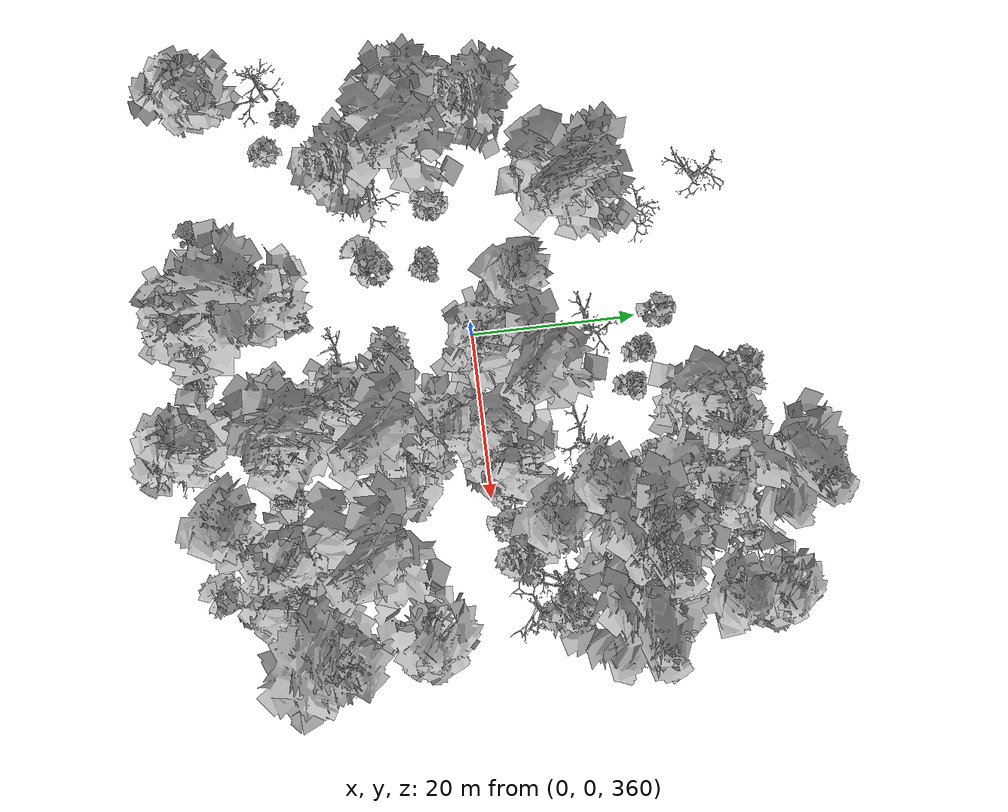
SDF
<sdf version="1.6">
 <world name="default">
  <light name="sun" type="directional">
   <pose>0 0 10 0 -0 0</pose>
   <diffuse>0.8 0.8 0.8 1</diffuse>
   <specular>0.2 0.2 0.2 1</specular>
   <attenuation>
    <range>1000</range>
    <constant>0.9</constant>
    <linear>0.01</linear>
    <quadratic>0.001</quadratic>
   </attenuation>
   <direction>-0.5 0.1 -0.9</direction>
  </light>
  <scene>
   <sky><clouds><speed>12</speed></clouds></sky>
   <ambient>0.4 0.4 0.4 1</ambient>
   <background>0.7 0.7 0.7 1</background>
   <shadows>1</shadows>
  </scene>
  <spherical_coordinates>
   <surface_model>EARTH_WGS84</surface_model>
   <latitude_deg>47.3977</latitude_deg>
   <longitude_deg>8.54559</longitude_deg>
   <elevation>0</elevation>
   <heading_deg>0</heading_deg>
  </spherical_coordinates>
  <physics name="default_physics" default="0" type="ode">
   <ode>
    <solver>
     <type>quick</type>
     <iters>100</iters>
     <sor>1.3</sor>
     <use_dynamic_moi_rescaling>0</use_dynamic_moi_rescaling>
    </solver>
    <constraints>
     <cfm>0</cfm>
     <erp>0.2</erp>
     <contact_max_correcting_vel>100</contact_max_correcting_vel>
     <contact_surface_layer>0.001</contact_surface_layer>
    </constraints>
   </ode>
   <max_step_size>0.002</max_step_size>
   <real_time_factor>1</real_time_factor>
   <real_time_update_rate>500</real_time_update_rate>
  </physics>
  <gravity>0 0 -9.8</gravity>
  <magnetic_field>6e-06 2.3e-05 -4.2e-05</magnetic_field>
  <atmosphere type="adiabatic"/>
  <model name="my_mesh0">
   <pose>21.5166 27.1415 356.838 0 -0 0.201744</pose>
   <static>1</static>
   <link name="body">
    <visual name="visual">
     <geometry><mesh><uri>model://trees/19.dae</uri><scale>1 1 1</scale></mesh></geometry>
    </visual>
    <collision name="collision">
     <geometry><mesh><uri>model://trees/19.dae</uri><scale>1 1 1</scale></mesh></geometry>
    </collision>
   </link>
  </model>
  <model name="my_mesh1">
   <pose>33.5597 7.6444 359.053 0 -0 1.34309</pose>
   <static>1</static>
   <link name="body">
    <visual name="visual">
     <geometry><mesh><uri>model://trees/7.dae</uri><scale>1 1 1</scale></mesh></geometry>
    </visual>
    <collision name="collision">
     <geometry><mesh><uri>model://trees/7.dae</uri><scale>1 1 1</scale></mesh></geometry>
    </collision>
   </link>
  </model>
  <model name="my_mesh2">
   <pose>17.9104 19.8108 357.181 0 0 -0.54948</pose>
   <static>1</static>
   <link name="body">
    <visual name="visual">
     <geometry><mesh><uri>model://trees/4.dae</uri><scale>1 1 1</scale></mesh></geometry>
    </visual>
    <collision name="collision">
     <geometry><mesh><uri>model://trees/4.dae</uri><scale>1 1 1</scale></mesh></geometry>
    </collision>
   </link>
  </model>
  <model name="my_mesh3">
   <pose>28.0439 29.9841 357.687 0 0 -0.559596</pose>
   <static>1</static>
   <link name="body">
    <visual name="visual">
     <geometry><mesh><uri>model://trees/0.dae</uri><scale>1 1 1</scale></mesh></geometry>
    </visual>
    <collision name="collision">
     <geometry><mesh><uri>model://trees/0.dae</uri><scale>1 1 1</scale></mesh></geometry>
    </collision>
   </link>
  </model>
  <model name="my_mesh4">
   <pose>19.7328 22.4859 357.15 0 -0 0.228012</pose>
   <static>1</static>
   <link name="body">
    <visual name="visual">
     <geometry><mesh><uri>model://trees/13.dae</uri><scale>1 1 1</scale></mesh></geometry>
    </visual>
    <collision name="collision">
     <geometry><mesh><uri>model://trees/13.dae</uri><scale>1 1 1</scale></mesh></geometry>
    </collision>
   </link>
  </model>
  <model name="my_mesh5">
   <pose>22.4893 6.48692 358.892 0 -0 1.29737</pose>
   <static>1</static>
   <link name="body">
    <visual name="visual">
     <geometry><mesh><uri>model://trees/11.dae</uri><scale>1 1 1</scale></mesh></geometry>
    </visual>
    <collision name="collision">
     <geometry><mesh><uri>model://trees/11.dae</uri><scale>1 1 1</scale></mesh></geometry>
    </collision>
   </link>
  </model>
  <model name="my_mesh6">
   <pose>21.3742 26.0179 356.882 0 -0 0.825766</pose>
   <static>1</static>
   <link name="body">
    <visual name="visual">
     <geometry><mesh><uri>model://trees/15.dae</uri><scale>1 1 1</scale></mesh></geometry>
    </visual>
    <collision name="collision">
     <geometry><mesh><uri>model://trees/15.dae</uri><scale>1 1 1</scale></mesh></geometry>
    </collision>
   </link>
  </model>
  <model name="my_mesh7">
   <pose>9.73709 25.9963 355.56 0 0 -0.54868</pose>
   <static>1</static>
   <link name="body">
    <visual name="visual">
     <geometry><mesh><uri>model://trees/11.dae</uri><scale>1 1 1</scale></mesh></geometry>
    </visual>
    <collision name="collision">
     <geometry><mesh><uri>model://trees/11.dae</uri><scale>1 1 1</scale></mesh></geometry>
    </collision>
   </link>
  </model>
  <model name="my_mesh8">
   <pose>33.5902 26.5411 357.777 0 -0 1.47182</pose>
   <static>1</static>
   <link name="body">
    <visual name="visual">
     <geometry><mesh><uri>model://trees/11.dae</uri><scale>1 1 1</scale></mesh></geometry>
    </visual>
    <collision name="collision">
     <geometry><mesh><uri>model://trees/11.dae</uri><scale>1 1 1</scale></mesh></geometry>
    </collision>
   </link>
  </model>
  <model name="my_mesh9">
   <pose>19.0828 14.7371 357.488 0 -0 1.20327</pose>
   <static>1</static>
   <link name="body">
    <visual name="visual">
     <geometry><mesh><uri>model://trees/4.dae</uri><scale>1 1 1</scale></mesh></geometry>
    </visual>
    <collision name="collision">
     <geometry><mesh><uri>model://trees/4.dae</uri><scale>1 1 1</scale></mesh></geometry>
    </collision>
   </link>
  </model>
  <model name="my_mesh10">
   <pose>0.516906 14.2607 355.552 0 0 -1.35807</pose>
   <static>1</static>
   <link name="body">
    <visual name="visual">
     <geometry><mesh><uri>model://trees/18.dae</uri><scale>1 1 1</scale></mesh></geometry>
    </visual>
    <collision name="collision">
     <geometry><mesh><uri>model://trees/18.dae</uri><scale>1 1 1</scale></mesh></geometry>
    </collision>
   </link>
  </model>
  <model name="my_mesh11">
   <pose>8.53214 18.5393 355.779 0 -0 0.512432</pose>
   <static>1</static>
   <link name="body">
    <visual name="visual">
     <geometry><mesh><uri>model://trees/6.dae</uri><scale>1 1 1</scale></mesh></geometry>
    </visual>
    <collision name="collision">
     <geometry><mesh><uri>model://trees/6.dae</uri><scale>1 1 1</scale></mesh></geometry>
    </collision>
   </link>
  </model>
  <model name="my_mesh12">
   <pose>15.1226 28.2982 356.233 0 -0 1.40347</pose>
   <static>1</static>
   <link name="body">
    <visual name="visual">
     <geometry><mesh><uri>model://trees/14.dae</uri><scale>1 1 1</scale></mesh></geometry>
    </visual>
    <collision name="collision">
     <geometry><mesh><uri>model://trees/14.dae</uri><scale>1 1 1</scale></mesh></geometry>
    </collision>
   </link>
  </model>
  <model name="my_mesh13">
   <pose>19.3101 34.7017 356.04 0 -0 0.905402</pose>
   <static>1</static>
   <link name="body">
    <visual name="visual">
     <geometry><mesh><uri>model://trees/10.dae</uri><scale>1 1 1</scale></mesh></geometry>
    </visual>
    <collision name="collision">
     <geometry><mesh><uri>model://trees/10.dae</uri><scale>1 1 1</scale></mesh></geometry>
    </collision>
   </link>
  </model>
  <model name="my_mesh14">
   <pose>16.8988 21.6624 356.967 0 -0 0.187161</pose>
   <static>1</static>
   <link name="body">
    <visual name="visual">
     <geometry><mesh><uri>model://trees/6.dae</uri><scale>1 1 1</scale></mesh></geometry>
    </visual>
    <collision name="collision">
     <geometry><mesh><uri>model://trees/6.dae</uri><scale>1 1 1</scale></mesh></geometry>
    </collision>
   </link>
  </model>
  <model name="my_mesh15">
   <pose>24.1455 18.3687 357.703 0 0 -0.517641</pose>
   <static>1</static>
   <link name="body">
    <visual name="visual">
     <geometry><mesh><uri>model://trees/10.dae</uri><scale>1 1 1</scale></mesh></geometry>
    </visual>
    <collision name="collision">
     <geometry><mesh><uri>model://trees/10.dae</uri><scale>1 1 1</scale></mesh></geometry>
    </collision>
   </link>
  </model>
  <model name="my_mesh16">
   <pose>26.1483 17.2498 357.863 0 -0 0.541821</pose>
   <static>1</static>
   <link name="body">
    <visual name="visual">
     <geometry><mesh><uri>model://trees/10.dae</uri><scale>1 1 1</scale></mesh></geometry>
    </visual>
    <collision name="collision">
     <geometry><mesh><uri>model://trees/10.dae</uri><scale>1 1 1</scale></mesh></geometry>
    </collision>
   </link>
  </model>
  <model name="my_mesh17">
   <pose>34.0415 32.321 356.651 0 -0 1.00524</pose>
   <static>1</static>
   <link name="body">
    <visual name="visual">
     <geometry><mesh><uri>model://trees/12.dae</uri><scale>1 1 1</scale></mesh></geometry>
    </visual>
    <collision name="collision">
     <geometry><mesh><uri>model://trees/12.dae</uri><scale>1 1 1</scale></mesh></geometry>
    </collision>
   </link>
  </model>
  <model name="my_mesh18">
   <pose>28.1881 12.5024 358.361 0 0 -0.152817</pose>
   <static>1</static>
   <link name="body">
    <visual name="visual">
     <geometry><mesh><uri>model://trees/2.dae</uri><scale>1 1 1</scale></mesh></geometry>
    </visual>
    <collision name="collision">
     <geometry><mesh><uri>model://trees/2.dae</uri><scale>1 1 1</scale></mesh></geometry>
    </collision>
   </link>
  </model>
  <model name="my_mesh19">
   <pose>34.6491 15.2813 357.806 0 -0 0.397239</pose>
   <static>1</static>
   <link name="body">
    <visual name="visual">
     <geometry><mesh><uri>model://trees/10.dae</uri><scale>1 1 1</scale></mesh></geometry>
    </visual>
    <collision name="collision">
     <geometry><mesh><uri>model://trees/10.dae</uri><scale>1 1 1</scale></mesh></geometry>
    </collision>
   </link>
  </model>
  <model name="my_mesh20">
   <pose>22.4984 -13.4306 361.921 0 0 -0.702154</pose>
   <static>1</static>
   <link name="body">
    <visual name="visual">
     <geometry><mesh><uri>model://trees/10.dae</uri><scale>1 1 1</scale></mesh></geometry>
    </visual>
    <collision name="collision">
     <geometry><mesh><uri>model://trees/10.dae</uri><scale>1 1 1</scale></mesh></geometry>
    </collision>
   </link>
  </model>
  <model name="my_mesh21">
   <pose>-0.404034 23.28 355.15 0 0 -0.510655</pose>
   <static>1</static>
   <link name="body">
    <visual name="visual">
     <geometry><mesh><uri>model://trees/1.dae</uri><scale>1 1 1</scale></mesh></geometry>
    </visual>
    <collision name="collision">
     <geometry><mesh><uri>model://trees/1.dae</uri><scale>1 1 1</scale></mesh></geometry>
    </collision>
   </link>
  </model>
  <model name="my_mesh22">
   <pose>26.2192 2.87107 359.496 0 0 -1.39949</pose>
   <static>1</static>
   <link name="body">
    <visual name="visual">
     <geometry><mesh><uri>model://trees/7.dae</uri><scale>1 1 1</scale></mesh></geometry>
    </visual>
    <collision name="collision">
     <geometry><mesh><uri>model://trees/7.dae</uri><scale>1 1 1</scale></mesh></geometry>
    </collision>
   </link>
  </model>
  <model name="my_mesh23">
   <pose>7.18562 32.974 354.973 0 -0 1.22656</pose>
   <static>1</static>
   <link name="body">
    <visual name="visual">
     <geometry><mesh><uri>model://trees/4.dae</uri><scale>1 1 1</scale></mesh></geometry>
    </visual>
    <collision name="collision">
     <geometry><mesh><uri>model://trees/4.dae</uri><scale>1 1 1</scale></mesh></geometry>
    </collision>
   </link>
  </model>
  <model name="my_mesh24">
   <pose>10.8607 1.06596 358.819 0 0 -0.882768</pose>
   <static>1</static>
   <link name="body">
    <visual name="visual">
     <geometry><mesh><uri>model://trees/11.dae</uri><scale>1 1 1</scale></mesh></geometry>
    </visual>
    <collision name="collision">
     <geometry><mesh><uri>model://trees/11.dae</uri><scale>1 1 1</scale></mesh></geometry>
    </collision>
   </link>
  </model>
  <model name="my_mesh25">
   <pose>33.6004 4.20811 359.47 0 -0 1.13486</pose>
   <static>1</static>
   <link name="body">
    <visual name="visual">
     <geometry><mesh><uri>model://trees/19.dae</uri><scale>1 1 1</scale></mesh></geometry>
    </visual>
    <collision name="collision">
     <geometry><mesh><uri>model://trees/19.dae</uri><scale>1 1 1</scale></mesh></geometry>
    </collision>
   </link>
  </model>
  <model name="my_mesh26">
   <pose>19.2328 13.0651 357.688 0 -0 1.5616</pose>
   <static>1</static>
   <link name="body">
    <visual name="visual">
     <geometry><mesh><uri>model://trees/11.dae</uri><scale>1 1 1</scale></mesh></geometry>
    </visual>
    <collision name="collision">
     <geometry><mesh><uri>model://trees/11.dae</uri><scale>1 1 1</scale></mesh></geometry>
    </collision>
   </link>
  </model>
  <model name="my_mesh27">
   <pose>33.3349 28.5978 357.432 0 0 -1.51614</pose>
   <static>1</static>
   <link name="body">
    <visual name="visual">
     <geometry><mesh><uri>model://trees/6.dae</uri><scale>1 1 1</scale></mesh></geometry>
    </visual>
    <collision name="collision">
     <geometry><mesh><uri>model://trees/6.dae</uri><scale>1 1 1</scale></mesh></geometry>
    </collision>
   </link>
  </model>
  <model name="my_mesh28">
   <pose>4.32959 20.2126 355.24 0 -0 0.849549</pose>
   <static>1</static>
   <link name="body">
    <visual name="visual">
     <geometry><mesh><uri>model://trees/6.dae</uri><scale>1 1 1</scale></mesh></geometry>
    </visual>
    <collision name="collision">
     <geometry><mesh><uri>model://trees/6.dae</uri><scale>1 1 1</scale></mesh></geometry>
    </collision>
   </link>
  </model>
  <model name="my_mesh29">
   <pose>27.7282 15.6924 358.022 0 -0 0.217743</pose>
   <static>1</static>
   <link name="body">
    <visual name="visual">
     <geometry><mesh><uri>model://trees/13.dae</uri><scale>1 1 1</scale></mesh></geometry>
    </visual>
    <collision name="collision">
     <geometry><mesh><uri>model://trees/13.dae</uri><scale>1 1 1</scale></mesh></geometry>
    </collision>
   </link>
  </model>
  <model name="my_mesh30">
   <pose>18.316 15.1277 357.397 0 -0 1.26635</pose>
   <static>1</static>
   <link name="body">
    <visual name="visual">
     <geometry><mesh><uri>model://trees/0.dae</uri><scale>1 1 1</scale></mesh></geometry>
    </visual>
    <collision name="collision">
     <geometry><mesh><uri>model://trees/0.dae</uri><scale>1 1 1</scale></mesh></geometry>
    </collision>
   </link>
  </model>
  <model name="my_mesh31">
   <pose>21.5711 18.1601 357.577 0 0 -0.786913</pose>
   <static>1</static>
   <link name="body">
    <visual name="visual">
     <geometry><mesh><uri>model://trees/1.dae</uri><scale>1 1 1</scale></mesh></geometry>
    </visual>
    <collision name="collision">
     <geometry><mesh><uri>model://trees/1.dae</uri><scale>1 1 1</scale></mesh></geometry>
    </collision>
   </link>
  </model>
  <model name="my_mesh32">
   <pose>14.352 11.5582 357.363 0 0 -1.38977</pose>
   <static>1</static>
   <link name="body">
    <visual name="visual">
     <geometry><mesh><uri>model://trees/17.dae</uri><scale>1 1 1</scale></mesh></geometry>
    </visual>
    <collision name="collision">
     <geometry><mesh><uri>model://trees/17.dae</uri><scale>1 1 1</scale></mesh></geometry>
    </collision>
   </link>
  </model>
  <model name="my_mesh33">
   <pose>11.7732 -34.9469 362.266 0 -0 0.62788</pose>
   <static>1</static>
   <link name="body">
    <visual name="visual">
     <geometry><mesh><uri>model://trees/16.dae</uri><scale>1 1 1</scale></mesh></geometry>
    </visual>
    <collision name="collision">
     <geometry><mesh><uri>model://trees/16.dae</uri><scale>1 1 1</scale></mesh></geometry>
    </collision>
   </link>
  </model>
  <model name="my_mesh34">
   <pose>19.4777 2.09827 359.743 0 -0 1.44327</pose>
   <static>1</static>
   <link name="body">
    <visual name="visual">
     <geometry><mesh><uri>model://trees/6.dae</uri><scale>1 1 1</scale></mesh></geometry>
    </visual>
    <collision name="collision">
     <geometry><mesh><uri>model://trees/6.dae</uri><scale>1 1 1</scale></mesh></geometry>
    </collision>
   </link>
  </model>
  <model name="my_mesh35">
   <pose>34.7878 -20.3173 363.691 0 -0 1.42106</pose>
   <static>1</static>
   <link name="body">
    <visual name="visual">
     <geometry><mesh><uri>model://trees/9.dae</uri><scale>1 1 1</scale></mesh></geometry>
    </visual>
    <collision name="collision">
     <geometry><mesh><uri>model://trees/9.dae</uri><scale>1 1 1</scale></mesh></geometry>
    </collision>
   </link>
  </model>
  <model name="my_mesh36">
   <pose>-0.505964 6.28407 355.962 0 0 -1.2789</pose>
   <static>1</static>
   <link name="body">
    <visual name="visual">
     <geometry><mesh><uri>model://trees/2.dae</uri><scale>1 1 1</scale></mesh></geometry>
    </visual>
    <collision name="collision">
     <geometry><mesh><uri>model://trees/2.dae</uri><scale>1 1 1</scale></mesh></geometry>
    </collision>
   </link>
  </model>
  <model name="my_mesh37">
   <pose>-17.5488 -11.0827 354.247 0 -0 0.015195</pose>
   <static>1</static>
   <link name="body">
    <visual name="visual">
     <geometry><mesh><uri>model://trees/18.dae</uri><scale>1 1 1</scale></mesh></geometry>
    </visual>
    <collision name="collision">
     <geometry><mesh><uri>model://trees/18.dae</uri><scale>1 1 1</scale></mesh></geometry>
    </collision>
   </link>
  </model>
  <model name="my_mesh38">
   <pose>1.82591 -16.2885 358.622 0 0 -1.31432</pose>
   <static>1</static>
   <link name="body">
    <visual name="visual">
     <geometry><mesh><uri>model://trees/17.dae</uri><scale>1 1 1</scale></mesh></geometry>
    </visual>
    <collision name="collision">
     <geometry><mesh><uri>model://trees/17.dae</uri><scale>1 1 1</scale></mesh></geometry>
    </collision>
   </link>
  </model>
  <model name="my_mesh39">
   <pose>24.01 -23.4684 362.873 0 -0 1.47847</pose>
   <static>1</static>
   <link name="body">
    <visual name="visual">
     <geometry><mesh><uri>model://trees/14.dae</uri><scale>1 1 1</scale></mesh></geometry>
    </visual>
    <collision name="collision">
     <geometry><mesh><uri>model://trees/14.dae</uri><scale>1 1 1</scale></mesh></geometry>
    </collision>
   </link>
  </model>
  <model name="my_mesh40">
   <pose>16.2164 -11.0237 360.796 0 -0 1.55665</pose>
   <static>1</static>
   <link name="body">
    <visual name="visual">
     <geometry><mesh><uri>model://trees/12.dae</uri><scale>1 1 1</scale></mesh></geometry>
    </visual>
    <collision name="collision">
     <geometry><mesh><uri>model://trees/12.dae</uri><scale>1 1 1</scale></mesh></geometry>
    </collision>
   </link>
  </model>
  <model name="my_mesh41">
   <pose>-33.7817 -32.042 352.224 0 0 -0.387905</pose>
   <static>1</static>
   <link name="body">
    <visual name="visual">
     <geometry><mesh><uri>model://trees/14.dae</uri><scale>1 1 1</scale></mesh></geometry>
    </visual>
    <collision name="collision">
     <geometry><mesh><uri>model://trees/14.dae</uri><scale>1 1 1</scale></mesh></geometry>
    </collision>
   </link>
  </model>
  <model name="my_mesh42">
   <pose>9.28142 -34.2984 361.563 0 -0 0.286472</pose>
   <static>1</static>
   <link name="body">
    <visual name="visual">
     <geometry><mesh><uri>model://trees/14.dae</uri><scale>1 1 1</scale></mesh></geometry>
    </visual>
    <collision name="collision">
     <geometry><mesh><uri>model://trees/14.dae</uri><scale>1 1 1</scale></mesh></geometry>
    </collision>
   </link>
  </model>
  <model name="my_mesh43">
   <pose>-30.4249 -20.3053 352.663 0 0 -1.19408</pose>
   <static>1</static>
   <link name="body">
    <visual name="visual">
     <geometry><mesh><uri>model://trees/3.dae</uri><scale>1 1 1</scale></mesh></geometry>
    </visual>
    <collision name="collision">
     <geometry><mesh><uri>model://trees/3.dae</uri><scale>1 1 1</scale></mesh></geometry>
    </collision>
   </link>
  </model>
  <model name="my_mesh44">
   <pose>15.4868 -30.9906 362.272 0 0 -1.20789</pose>
   <static>1</static>
   <link name="body">
    <visual name="visual">
     <geometry><mesh><uri>model://trees/3.dae</uri><scale>1 1 1</scale></mesh></geometry>
    </visual>
    <collision name="collision">
     <geometry><mesh><uri>model://trees/3.dae</uri><scale>1 1 1</scale></mesh></geometry>
    </collision>
   </link>
  </model>
  <model name="my_mesh45">
   <pose>-16.4046 -33.3024 354.514 0 0 -0.120113</pose>
   <static>1</static>
   <link name="body">
    <visual name="visual">
     <geometry><mesh><uri>model://trees/3.dae</uri><scale>1 1 1</scale></mesh></geometry>
    </visual>
    <collision name="collision">
     <geometry><mesh><uri>model://trees/3.dae</uri><scale>1 1 1</scale></mesh></geometry>
    </collision>
   </link>
  </model>
  <model name="my_mesh46">
   <pose>16.5486 -23.7424 361.621 0 0 -0.325673</pose>
   <static>1</static>
   <link name="body">
    <visual name="visual">
     <geometry><mesh><uri>model://trees/6.dae</uri><scale>1 1 1</scale></mesh></geometry>
    </visual>
    <collision name="collision">
     <geometry><mesh><uri>model://trees/6.dae</uri><scale>1 1 1</scale></mesh></geometry>
    </collision>
   </link>
  </model>
  <model name="my_mesh47">
   <pose>-7.7893 -28.8538 356.608 0 -0 1.53613</pose>
   <static>1</static>
   <link name="body">
    <visual name="visual">
     <geometry><mesh><uri>model://trees/10.dae</uri><scale>1 1 1</scale></mesh></geometry>
    </visual>
    <collision name="collision">
     <geometry><mesh><uri>model://trees/10.dae</uri><scale>1 1 1</scale></mesh></geometry>
    </collision>
   </link>
  </model>
  <model name="my_mesh48">
   <pose>-4.6117 -21.3638 356.72 0 0 -0.769927</pose>
   <static>1</static>
   <link name="body">
    <visual name="visual">
     <geometry><mesh><uri>model://trees/6.dae</uri><scale>1 1 1</scale></mesh></geometry>
    </visual>
    <collision name="collision">
     <geometry><mesh><uri>model://trees/6.dae</uri><scale>1 1 1</scale></mesh></geometry>
    </collision>
   </link>
  </model>
  <model name="my_mesh49">
   <pose>29.9315 6.73235 359.142 0 0 -0.308726</pose>
   <static>1</static>
   <link name="body">
    <visual name="visual">
     <geometry><mesh><uri>model://trees/16.dae</uri><scale>1 1 1</scale></mesh></geometry>
    </visual>
    <collision name="collision">
     <geometry><mesh><uri>model://trees/16.dae</uri><scale>1 1 1</scale></mesh></geometry>
    </collision>
   </link>
  </model>
  <model name="my_mesh50">
   <pose>7.05309 -21.7112 360.139 0 0 -0.888346</pose>
   <static>1</static>
   <link name="body">
    <visual name="visual">
     <geometry><mesh><uri>model://trees/13.dae</uri><scale>1 1 1</scale></mesh></geometry>
    </visual>
    <collision name="collision">
     <geometry><mesh><uri>model://trees/13.dae</uri><scale>1 1 1</scale></mesh></geometry>
    </collision>
   </link>
  </model>
  <model name="my_mesh51">
   <pose>-8.08919 -31.3739 356.761 0 -0 0.060784</pose>
   <static>1</static>
   <link name="body">
    <visual name="visual">
     <geometry><mesh><uri>model://trees/19.dae</uri><scale>1 1 1</scale></mesh></geometry>
    </visual>
    <collision name="collision">
     <geometry><mesh><uri>model://trees/19.dae</uri><scale>1 1 1</scale></mesh></geometry>
    </collision>
   </link>
  </model>
  <model name="my_mesh52">
   <pose>26.5354 -18.4979 362.798 0 0 -1.17722</pose>
   <static>1</static>
   <link name="body">
    <visual name="visual">
     <geometry><mesh><uri>model://trees/5.dae</uri><scale>1 1 1</scale></mesh></geometry>
    </visual>
    <collision name="collision">
     <geometry><mesh><uri>model://trees/5.dae</uri><scale>1 1 1</scale></mesh></geometry>
    </collision>
   </link>
  </model>
  <model name="my_mesh53">
   <pose>-7.66853 -33.4358 356.689 0 0 -1.12817</pose>
   <static>1</static>
   <link name="body">
    <visual name="visual">
     <geometry><mesh><uri>model://trees/17.dae</uri><scale>1 1 1</scale></mesh></geometry>
    </visual>
    <collision name="collision">
     <geometry><mesh><uri>model://trees/17.dae</uri><scale>1 1 1</scale></mesh></geometry>
    </collision>
   </link>
  </model>
  <model name="my_mesh54">
   <pose>-9.42563 -4.83965 355.526 0 0 -1.06028</pose>
   <static>1</static>
   <link name="body">
    <visual name="visual">
     <geometry><mesh><uri>model://trees/6.dae</uri><scale>1 1 1</scale></mesh></geometry>
    </visual>
    <collision name="collision">
     <geometry><mesh><uri>model://trees/6.dae</uri><scale>1 1 1</scale></mesh></geometry>
    </collision>
   </link>
  </model>
  <model name="my_mesh55">
   <pose>-16.9866 -3.38245 354.709 0 0 -0.928588</pose>
   <static>1</static>
   <link name="body">
    <visual name="visual">
     <geometry><mesh><uri>model://trees/0.dae</uri><scale>1 1 1</scale></mesh></geometry>
    </visual>
    <collision name="collision">
     <geometry><mesh><uri>model://trees/0.dae</uri><scale>1 1 1</scale></mesh></geometry>
    </collision>
   </link>
  </model>
  <model name="my_mesh56">
   <pose>0.054819 1.10458 356.339 0 -0 0.93475</pose>
   <static>1</static>
   <link name="body">
    <visual name="visual">
     <geometry><mesh><uri>model://trees/15.dae</uri><scale>1 1 1</scale></mesh></geometry>
    </visual>
    <collision name="collision">
     <geometry><mesh><uri>model://trees/15.dae</uri><scale>1 1 1</scale></mesh></geometry>
    </collision>
   </link>
  </model>
  <model name="my_mesh57">
   <pose>-9.6775 -10.8962 355.405 0 -0 0.345113</pose>
   <static>1</static>
   <link name="body">
    <visual name="visual">
     <geometry><mesh><uri>model://trees/0.dae</uri><scale>1 1 1</scale></mesh></geometry>
    </visual>
    <collision name="collision">
     <geometry><mesh><uri>model://trees/0.dae</uri><scale>1 1 1</scale></mesh></geometry>
    </collision>
   </link>
  </model>
  <model name="my_mesh58">
   <pose>-34.1023 -29.3436 352.155 0 0 -0.107636</pose>
   <static>1</static>
   <link name="body">
    <visual name="visual">
     <geometry><mesh><uri>model://trees/4.dae</uri><scale>1 1 1</scale></mesh></geometry>
    </visual>
    <collision name="collision">
     <geometry><mesh><uri>model://trees/4.dae</uri><scale>1 1 1</scale></mesh></geometry>
    </collision>
   </link>
  </model>
  <model name="my_mesh59">
   <pose>11.1358 -26.4302 361.438 0 0 -1.0923</pose>
   <static>1</static>
   <link name="body">
    <visual name="visual">
     <geometry><mesh><uri>model://trees/4.dae</uri><scale>1 1 1</scale></mesh></geometry>
    </visual>
    <collision name="collision">
     <geometry><mesh><uri>model://trees/4.dae</uri><scale>1 1 1</scale></mesh></geometry>
    </collision>
   </link>
  </model>
  <model name="my_mesh60">
   <pose>5.85606 -13.7872 358.841 0 0 -0.300707</pose>
   <static>1</static>
   <link name="body">
    <visual name="visual">
     <geometry><mesh><uri>model://trees/15.dae</uri><scale>1 1 1</scale></mesh></geometry>
    </visual>
    <collision name="collision">
     <geometry><mesh><uri>model://trees/15.dae</uri><scale>1 1 1</scale></mesh></geometry>
    </collision>
   </link>
  </model>
  <model name="my_mesh61">
   <pose>-34.1861 -29.0033 352.155 0 0 -0.267081</pose>
   <static>1</static>
   <link name="body">
    <visual name="visual">
     <geometry><mesh><uri>model://trees/2.dae</uri><scale>1 1 1</scale></mesh></geometry>
    </visual>
    <collision name="collision">
     <geometry><mesh><uri>model://trees/2.dae</uri><scale>1 1 1</scale></mesh></geometry>
    </collision>
   </link>
  </model>
  <model name="my_mesh62">
   <pose>-6.37744 5.4645 355.438 0 -0 0.822406</pose>
   <static>1</static>
   <link name="body">
    <visual name="visual">
     <geometry><mesh><uri>model://trees/11.dae</uri><scale>1 1 1</scale></mesh></geometry>
    </visual>
    <collision name="collision">
     <geometry><mesh><uri>model://trees/11.dae</uri><scale>1 1 1</scale></mesh></geometry>
    </collision>
   </link>
  </model>
  <model name="my_mesh63">
   <pose>-24.8817 -5.95878 353.723 0 0 -0.865275</pose>
   <static>1</static>
   <link name="body">
    <visual name="visual">
     <geometry><mesh><uri>model://trees/10.dae</uri><scale>1 1 1</scale></mesh></geometry>
    </visual>
    <collision name="collision">
     <geometry><mesh><uri>model://trees/10.dae</uri><scale>1 1 1</scale></mesh></geometry>
    </collision>
   </link>
  </model>
  <model name="my_mesh64">
   <pose>20.0269 -16.032 361.813 0 -0 0.671323</pose>
   <static>1</static>
   <link name="body">
    <visual name="visual">
     <geometry><mesh><uri>model://trees/19.dae</uri><scale>1 1 1</scale></mesh></geometry>
    </visual>
    <collision name="collision">
     <geometry><mesh><uri>model://trees/19.dae</uri><scale>1 1 1</scale></mesh></geometry>
    </collision>
   </link>
  </model>
  <model name="my_mesh65">
   <pose>8.95416 -23.2788 360.66 0 0 -0.024762</pose>
   <static>1</static>
   <link name="body">
    <visual name="visual">
     <geometry><mesh><uri>model://trees/9.dae</uri><scale>1 1 1</scale></mesh></geometry>
    </visual>
    <collision name="collision">
     <geometry><mesh><uri>model://trees/9.dae</uri><scale>1 1 1</scale></mesh></geometry>
    </collision>
   </link>
  </model>
  <model name="my_mesh66">
   <pose>-20.0838 9.65253 354.056 0 0 -0.308862</pose>
   <static>1</static>
   <link name="body">
    <visual name="visual">
     <geometry><mesh><uri>model://trees/7.dae</uri><scale>1 1 1</scale></mesh></geometry>
    </visual>
    <collision name="collision">
     <geometry><mesh><uri>model://trees/7.dae</uri><scale>1 1 1</scale></mesh></geometry>
    </collision>
   </link>
  </model>
  <model name="my_mesh67">
   <pose>9.74892 32.7036 355.192 0 -0 0.939327</pose>
   <static>1</static>
   <link name="body">
    <visual name="visual">
     <geometry><mesh><uri>model://trees/5.dae</uri><scale>1 1 1</scale></mesh></geometry>
    </visual>
    <collision name="collision">
     <geometry><mesh><uri>model://trees/5.dae</uri><scale>1 1 1</scale></mesh></geometry>
    </collision>
   </link>
  </model>
  <model name="my_mesh68">
   <pose>17.6446 -23.3634 361.779 0 0 -0.625591</pose>
   <static>1</static>
   <link name="body">
    <visual name="visual">
     <geometry><mesh><uri>model://trees/1.dae</uri><scale>1 1 1</scale></mesh></geometry>
    </visual>
    <collision name="collision">
     <geometry><mesh><uri>model://trees/1.dae</uri><scale>1 1 1</scale></mesh></geometry>
    </collision>
   </link>
  </model>
  <model name="my_mesh69">
   <pose>-17.1142 30.4921 353.851 0 0 -0.594603</pose>
   <static>1</static>
   <link name="body">
    <visual name="visual">
     <geometry><mesh><uri>model://trees/19.dae</uri><scale>1 1 1</scale></mesh></geometry>
    </visual>
    <collision name="collision">
     <geometry><mesh><uri>model://trees/19.dae</uri><scale>1 1 1</scale></mesh></geometry>
    </collision>
   </link>
  </model>
  <model name="my_mesh70">
   <pose>10.2926 -4.8365 359.373 0 -0 1.27903</pose>
   <static>1</static>
   <link name="body">
    <visual name="visual">
     <geometry><mesh><uri>model://trees/15.dae</uri><scale>1 1 1</scale></mesh></geometry>
    </visual>
    <collision name="collision">
     <geometry><mesh><uri>model://trees/15.dae</uri><scale>1 1 1</scale></mesh></geometry>
    </collision>
   </link>
  </model>
  <model name="my_mesh71">
   <pose>23.0178 1.71521 359.647 0 0 -0.457357</pose>
   <static>1</static>
   <link name="body">
    <visual name="visual">
     <geometry><mesh><uri>model://trees/1.dae</uri><scale>1 1 1</scale></mesh></geometry>
    </visual>
    <collision name="collision">
     <geometry><mesh><uri>model://trees/1.dae</uri><scale>1 1 1</scale></mesh></geometry>
    </collision>
   </link>
  </model>
  <model name="my_mesh72">
   <pose>-29.454 3.42861 353.188 0 0 -1.4907</pose>
   <static>1</static>
   <link name="body">
    <visual name="visual">
     <geometry><mesh><uri>model://trees/8.dae</uri><scale>1 1 1</scale></mesh></geometry>
    </visual>
    <collision name="collision">
     <geometry><mesh><uri>model://trees/8.dae</uri><scale>1 1 1</scale></mesh></geometry>
    </collision>
   </link>
  </model>
  <model name="my_mesh73">
   <pose>-3.85861 -32.5781 357.637 0 -0 1.17081</pose>
   <static>1</static>
   <link name="body">
    <visual name="visual">
     <geometry><mesh><uri>model://trees/14.dae</uri><scale>1 1 1</scale></mesh></geometry>
    </visual>
    <collision name="collision">
     <geometry><mesh><uri>model://trees/14.dae</uri><scale>1 1 1</scale></mesh></geometry>
    </collision>
   </link>
  </model>
  <model name="my_mesh74">
   <pose>18.4808 -30.1906 362.345 0 -0 1.42734</pose>
   <static>1</static>
   <link name="body">
    <visual name="visual">
     <geometry><mesh><uri>model://trees/11.dae</uri><scale>1 1 1</scale></mesh></geometry>
    </visual>
    <collision name="collision">
     <geometry><mesh><uri>model://trees/11.dae</uri><scale>1 1 1</scale></mesh></geometry>
    </collision>
   </link>
  </model>
  <model name="my_mesh75">
   <pose>34.2148 -9.13194 361.395 0 -0 1.12867</pose>
   <static>1</static>
   <link name="body">
    <visual name="visual">
     <geometry><mesh><uri>model://trees/12.dae</uri><scale>1 1 1</scale></mesh></geometry>
    </visual>
    <collision name="collision">
     <geometry><mesh><uri>model://trees/12.dae</uri><scale>1 1 1</scale></mesh></geometry>
    </collision>
   </link>
  </model>
  <model name="my_mesh76">
   <pose>-7.00494 -34.298 356.834 0 -0 1.21103</pose>
   <static>1</static>
   <link name="body">
    <visual name="visual">
     <geometry><mesh><uri>model://trees/15.dae</uri><scale>1 1 1</scale></mesh></geometry>
    </visual>
    <collision name="collision">
     <geometry><mesh><uri>model://trees/15.dae</uri><scale>1 1 1</scale></mesh></geometry>
    </collision>
   </link>
  </model>
  <model name="my_mesh77">
   <pose>14.789 2.37035 359.393 0 0 -0.024196</pose>
   <static>1</static>
   <link name="body">
    <visual name="visual">
     <geometry><mesh><uri>model://trees/12.dae</uri><scale>1 1 1</scale></mesh></geometry>
    </visual>
    <collision name="collision">
     <geometry><mesh><uri>model://trees/12.dae</uri><scale>1 1 1</scale></mesh></geometry>
    </collision>
   </link>
  </model>
  <model name="my_mesh78">
   <pose>9.3278 -11.5297 359.431 0 0 -0.806769</pose>
   <static>1</static>
   <link name="body">
    <visual name="visual">
     <geometry><mesh><uri>model://trees/10.dae</uri><scale>1 1 1</scale></mesh></geometry>
    </visual>
    <collision name="collision">
     <geometry><mesh><uri>model://trees/10.dae</uri><scale>1 1 1</scale></mesh></geometry>
    </collision>
   </link>
  </model>
  <model name="my_mesh79">
   <pose>1.5283 -10.1817 357.649 0 0 -0.871683</pose>
   <static>1</static>
   <link name="body">
    <visual name="visual">
     <geometry><mesh><uri>model://trees/7.dae</uri><scale>1 1 1</scale></mesh></geometry>
    </visual>
    <collision name="collision">
     <geometry><mesh><uri>model://trees/7.dae</uri><scale>1 1 1</scale></mesh></geometry>
    </collision>
   </link>
  </model>
  <model name="my_mesh80">
   <pose>2.16019 -33.6481 359.757 0 0 -0.916537</pose>
   <static>1</static>
   <link name="body">
    <visual name="visual">
     <geometry><mesh><uri>model://trees/5.dae</uri><scale>1 1 1</scale></mesh></geometry>
    </visual>
    <collision name="collision">
     <geometry><mesh><uri>model://trees/5.dae</uri><scale>1 1 1</scale></mesh></geometry>
    </collision>
   </link>
  </model>
  <model name="my_mesh81">
   <pose>5.43021 8.12791 357.015 0 -0 1.05091</pose>
   <static>1</static>
   <link name="body">
    <visual name="visual">
     <geometry><mesh><uri>model://trees/16.dae</uri><scale>1 1 1</scale></mesh></geometry>
    </visual>
    <collision name="collision">
     <geometry><mesh><uri>model://trees/16.dae</uri><scale>1 1 1</scale></mesh></geometry>
    </collision>
   </link>
  </model>
  <model name="my_mesh82">
   <pose>-4.24363 -28.5931 357.25 0 -0 0.601782</pose>
   <static>1</static>
   <link name="body">
    <visual name="visual">
     <geometry><mesh><uri>model://trees/0.dae</uri><scale>1 1 1</scale></mesh></geometry>
    </visual>
    <collision name="collision">
     <geometry><mesh><uri>model://trees/0.dae</uri><scale>1 1 1</scale></mesh></geometry>
    </collision>
   </link>
  </model>
  <model name="my_mesh83">
   <pose>27.3333 -24.6109 363.549 0 0 -0.133937</pose>
   <static>1</static>
   <link name="body">
    <visual name="visual">
     <geometry><mesh><uri>model://trees/12.dae</uri><scale>1 1 1</scale></mesh></geometry>
    </visual>
    <collision name="collision">
     <geometry><mesh><uri>model://trees/12.dae</uri><scale>1 1 1</scale></mesh></geometry>
    </collision>
   </link>
  </model>
  <model name="my_mesh84">
   <pose>-17.8545 14.8243 354.138 0 0 -0.992755</pose>
   <static>1</static>
   <link name="body">
    <visual name="visual">
     <geometry><mesh><uri>model://trees/10.dae</uri><scale>1 1 1</scale></mesh></geometry>
    </visual>
    <collision name="collision">
     <geometry><mesh><uri>model://trees/10.dae</uri><scale>1 1 1</scale></mesh></geometry>
    </collision>
   </link>
  </model>
  <model name="my_mesh85">
   <pose>-11.3195 -12.4592 355.194 0 0 -0.515907</pose>
   <static>1</static>
   <link name="body">
    <visual name="visual">
     <geometry><mesh><uri>model://trees/5.dae</uri><scale>1 1 1</scale></mesh></geometry>
    </visual>
    <collision name="collision">
     <geometry><mesh><uri>model://trees/5.dae</uri><scale>1 1 1</scale></mesh></geometry>
    </collision>
   </link>
  </model>
  <model name="my_mesh86">
   <pose>26.7753 -31.9426 363.549 0 0 -0.611571</pose>
   <static>1</static>
   <link name="body">
    <visual name="visual">
     <geometry><mesh><uri>model://trees/5.dae</uri><scale>1 1 1</scale></mesh></geometry>
    </visual>
    <collision name="collision">
     <geometry><mesh><uri>model://trees/5.dae</uri><scale>1 1 1</scale></mesh></geometry>
    </collision>
   </link>
  </model>
  <model name="my_mesh87">
   <pose>-16.9479 13.1659 354.214 0 0 -0.900144</pose>
   <static>1</static>
   <link name="body">
    <visual name="visual">
     <geometry><mesh><uri>model://trees/10.dae</uri><scale>1 1 1</scale></mesh></geometry>
    </visual>
    <collision name="collision">
     <geometry><mesh><uri>model://trees/10.dae</uri><scale>1 1 1</scale></mesh></geometry>
    </collision>
   </link>
  </model>
  <model name="my_mesh88">
   <pose>-31.276 -5.15874 353.033 0 -0 0.012136</pose>
   <static>1</static>
   <link name="body">
    <visual name="visual">
     <geometry><mesh><uri>model://trees/8.dae</uri><scale>1 1 1</scale></mesh></geometry>
    </visual>
    <collision name="collision">
     <geometry><mesh><uri>model://trees/8.dae</uri><scale>1 1 1</scale></mesh></geometry>
    </collision>
   </link>
  </model>
  <model name="my_mesh89">
   <pose>19.449 11.2238 357.847 0 0 -0.250219</pose>
   <static>1</static>
   <link name="body">
    <visual name="visual">
     <geometry><mesh><uri>model://trees/1.dae</uri><scale>1 1 1</scale></mesh></geometry>
    </visual>
    <collision name="collision">
     <geometry><mesh><uri>model://trees/1.dae</uri><scale>1 1 1</scale></mesh></geometry>
    </collision>
   </link>
  </model>
  <model name="my_mesh90">
   <pose>11.1071 27.0043 355.823 0 -0 0.329427</pose>
   <static>1</static>
   <link name="body">
    <visual name="visual">
     <geometry><mesh><uri>model://trees/13.dae</uri><scale>1 1 1</scale></mesh></geometry>
    </visual>
    <collision name="collision">
     <geometry><mesh><uri>model://trees/13.dae</uri><scale>1 1 1</scale></mesh></geometry>
    </collision>
   </link>
  </model>
  <model name="my_mesh91">
   <pose>-23.1378 -13.4714 353.548 0 0 -1.35908</pose>
   <static>1</static>
   <link name="body">
    <visual name="visual">
     <geometry><mesh><uri>model://trees/8.dae</uri><scale>1 1 1</scale></mesh></geometry>
    </visual>
    <collision name="collision">
     <geometry><mesh><uri>model://trees/8.dae</uri><scale>1 1 1</scale></mesh></geometry>
    </collision>
   </link>
  </model>
  <model name="my_mesh92">
   <pose>-34.0205 -22.9108 352.159 0 -0 1.01619</pose>
   <static>1</static>
   <link name="body">
    <visual name="visual">
     <geometry><mesh><uri>model://trees/17.dae</uri><scale>1 1 1</scale></mesh></geometry>
    </visual>
    <collision name="collision">
     <geometry><mesh><uri>model://trees/17.dae</uri><scale>1 1 1</scale></mesh></geometry>
    </collision>
   </link>
  </model>
  <model name="my_mesh93">
   <pose>-16.4366 18.0368 354.182 0 -0 0.848727</pose>
   <static>1</static>
   <link name="body">
    <visual name="visual">
     <geometry><mesh><uri>model://trees/19.dae</uri><scale>1 1 1</scale></mesh></geometry>
    </visual>
    <collision name="collision">
     <geometry><mesh><uri>model://trees/19.dae</uri><scale>1 1 1</scale></mesh></geometry>
    </collision>
   </link>
  </model>
  <model name="my_mesh94">
   <pose>-0.56998 -0.493434 356.324 0 0 -0.780051</pose>
   <static>1</static>
   <link name="body">
    <visual name="visual">
     <geometry><mesh><uri>model://trees/3.dae</uri><scale>1 1 1</scale></mesh></geometry>
    </visual>
    <collision name="collision">
     <geometry><mesh><uri>model://trees/3.dae</uri><scale>1 1 1</scale></mesh></geometry>
    </collision>
   </link>
  </model>
  <model name="my_mesh95">
   <pose>-7.16958 -24.9822 356.479 0 -0 0.460524</pose>
   <static>1</static>
   <link name="body">
    <visual name="visual">
     <geometry><mesh><uri>model://trees/12.dae</uri><scale>1 1 1</scale></mesh></geometry>
    </visual>
    <collision name="collision">
     <geometry><mesh><uri>model://trees/12.dae</uri><scale>1 1 1</scale></mesh></geometry>
    </collision>
   </link>
  </model>
  <model name="my_mesh96">
   <pose>3.46414 6.6979 357.027 0 0 -0.451373</pose>
   <static>1</static>
   <link name="body">
    <visual name="visual">
     <geometry><mesh><uri>model://trees/10.dae</uri><scale>1 1 1</scale></mesh></geometry>
    </visual>
    <collision name="collision">
     <geometry><mesh><uri>model://trees/10.dae</uri><scale>1 1 1</scale></mesh></geometry>
    </collision>
   </link>
  </model>
  <model name="my_mesh97">
   <pose>-26.1194 -22.9279 353.279 0 0 -0.190781</pose>
   <static>1</static>
   <link name="body">
    <visual name="visual">
     <geometry><mesh><uri>model://trees/2.dae</uri><scale>1 1 1</scale></mesh></geometry>
    </visual>
    <collision name="collision">
     <geometry><mesh><uri>model://trees/2.dae</uri><scale>1 1 1</scale></mesh></geometry>
    </collision>
   </link>
  </model>
  <model name="my_mesh98">
   <pose>-12.7011 21.9105 354.504 0 -0 0.101768</pose>
   <static>1</static>
   <link name="body">
    <visual name="visual">
     <geometry><mesh><uri>model://trees/19.dae</uri><scale>1 1 1</scale></mesh></geometry>
    </visual>
    <collision name="collision">
     <geometry><mesh><uri>model://trees/19.dae</uri><scale>1 1 1</scale></mesh></geometry>
    </collision>
   </link>
  </model>
 </world>
</sdf>
